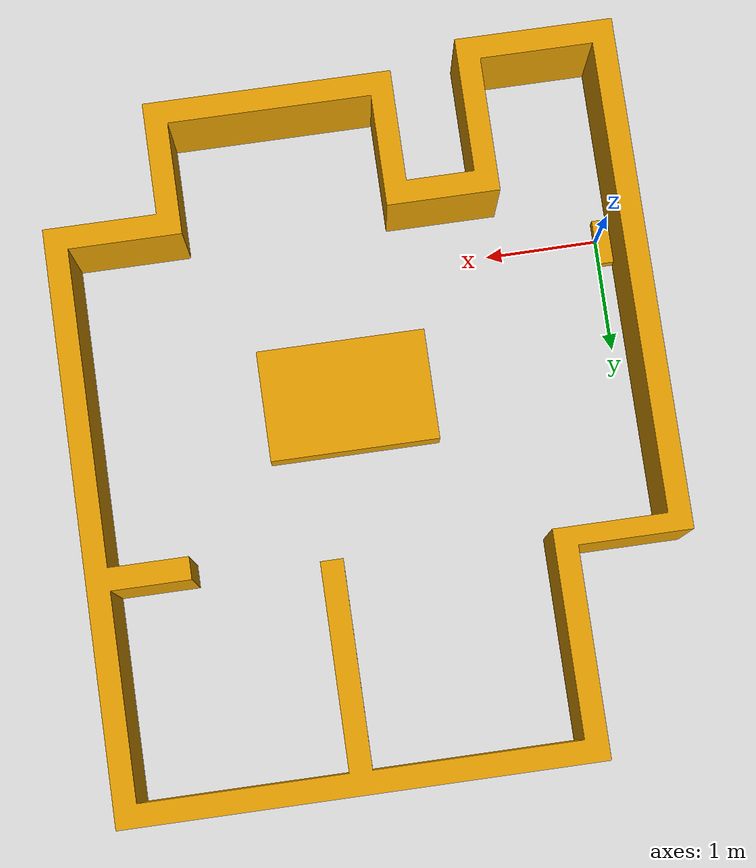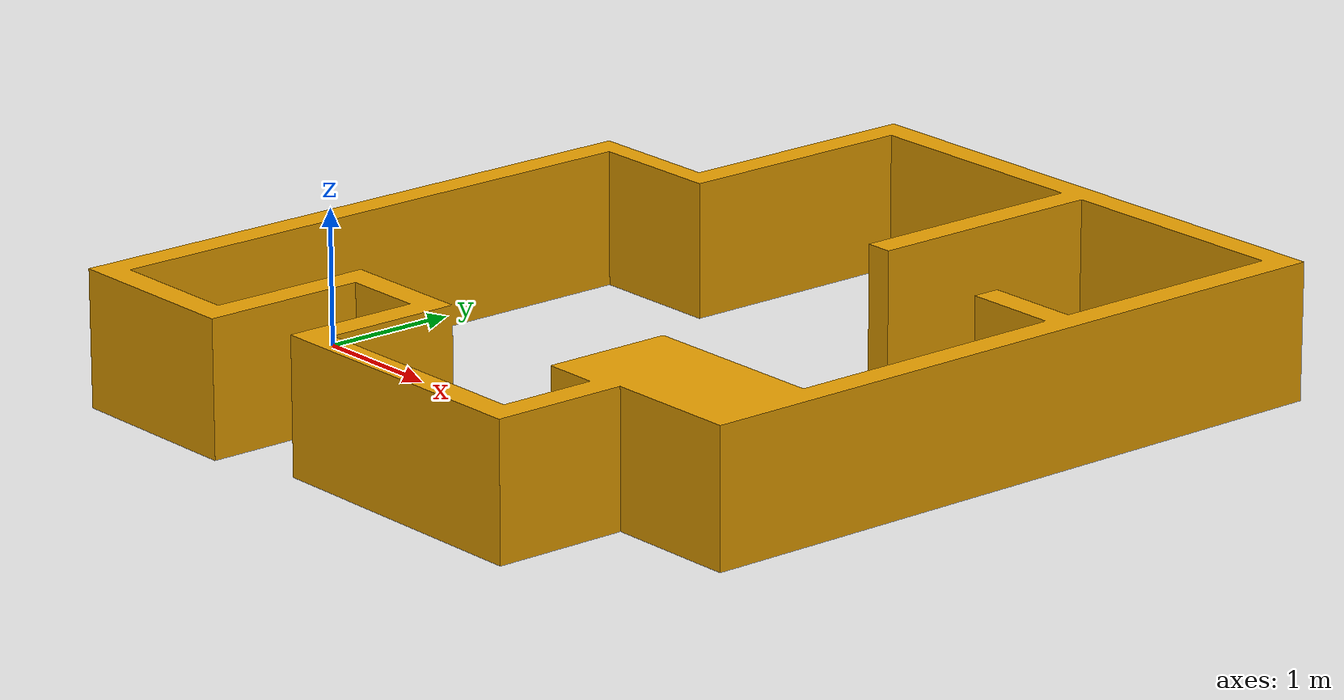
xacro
<?xml version="1.0"?>
<robot name="room" xmlns:xacro="http://ros.org/wiki/xacro">

  <link name="room_link">
    <visual>
      <geometry>
        <mesh filename="package://robot_vacuum_description/meshes/room.stl" scale="0.002 0.002 0.002"/>
      </geometry>
    </visual>
    <collision>
      <geometry>
        <mesh filename="package://robot_vacuum_description/meshes/room.stl" scale="0.002 0.002 0.002"/>
      </geometry>
    </collision>
    <inertial>
      <mass value="1.0"/>
      <inertia ixx="0.1" ixy="0.0" ixz="0.0" iyy="0.1" iyz="0.0" izz="0.1"/>
      <origin xyz="0 0 0"/>
    </inertial>
  </link>

  <gazebo reference="room_link">
    <static>true</static>
  </gazebo>

</robot>
